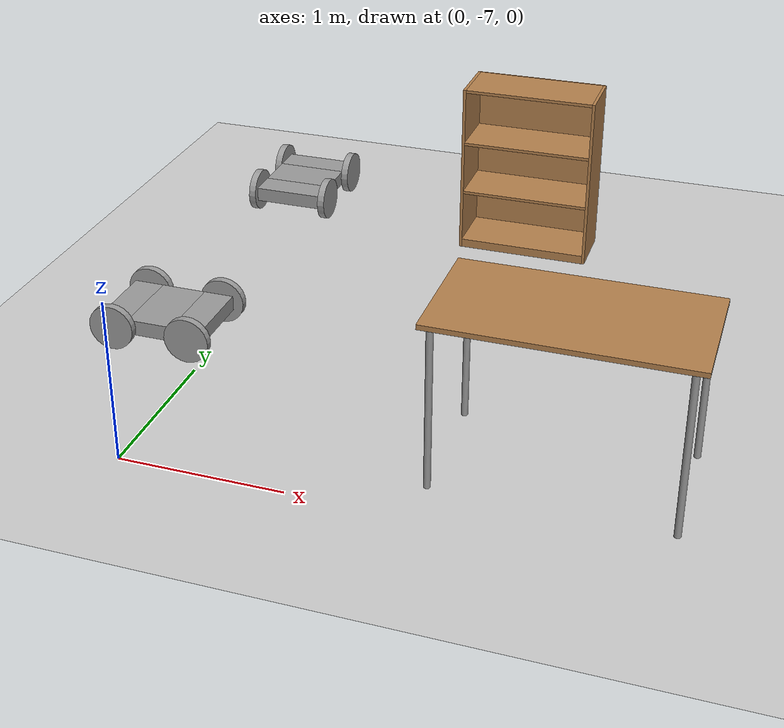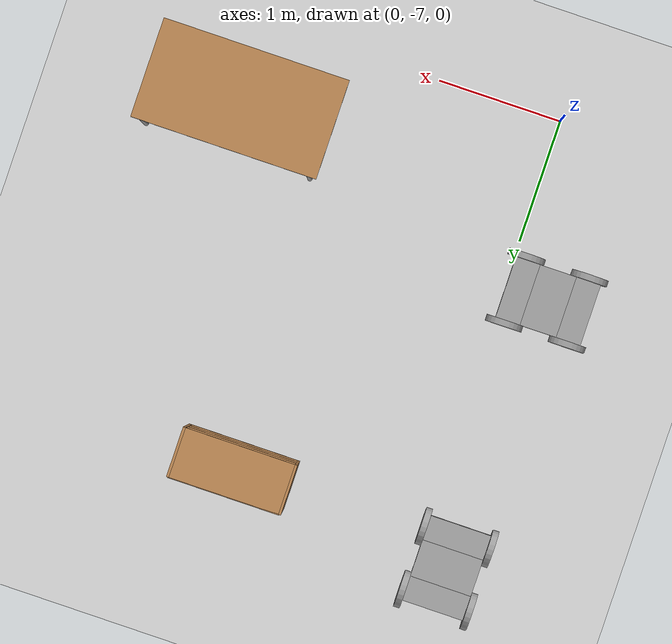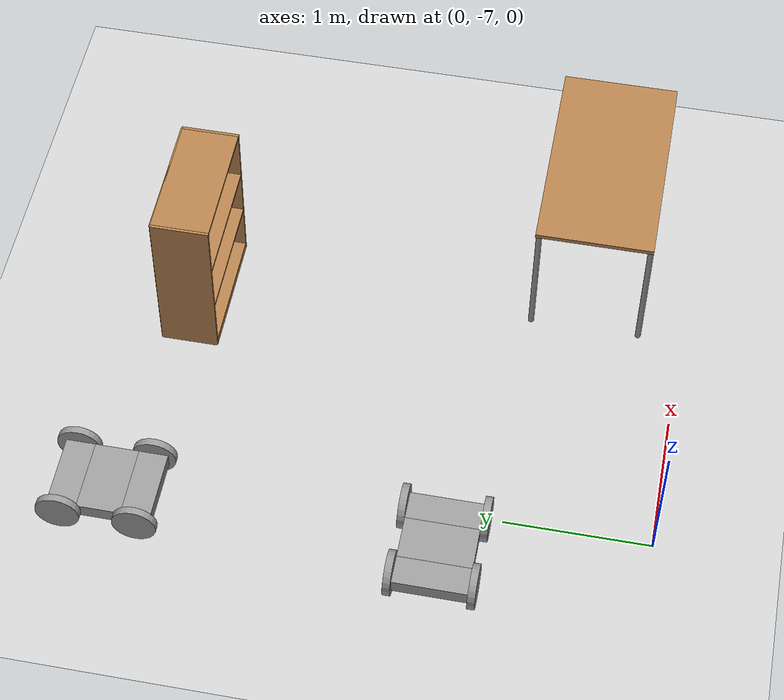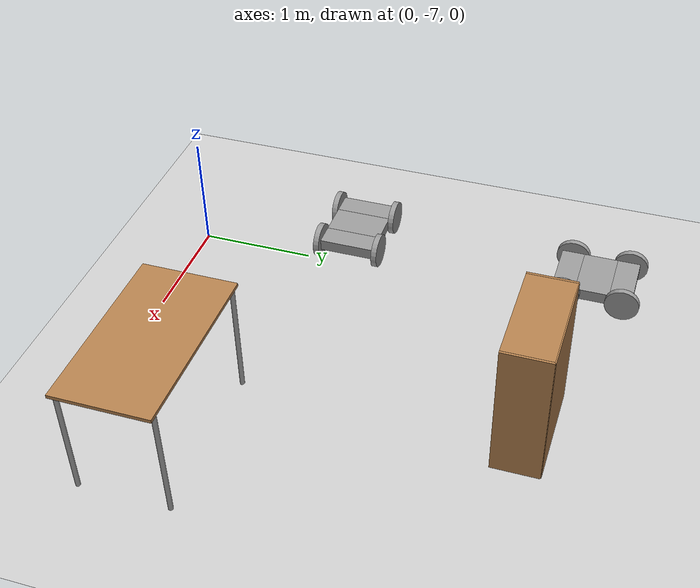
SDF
<sdf version="1.6">
 <world name="default">
  <model name="ground_plane">
   <static>1</static>
   <link name="link">
    <collision name="collision">
     <geometry><plane><normal>0 0 1</normal><size>100 100</size></plane></geometry>
     <surface><friction><ode><mu>100</mu><mu2>50</mu2></ode></friction></surface>
    </collision>
    <visual name="visual">
     <cast_shadows>0</cast_shadows>
     <geometry><plane><normal>0 0 1</normal><size>100 100</size></plane></geometry>
     <material>
      <script><uri>file://media/materials/scripts/gazebo.material</uri><name>Gazebo/Grey</name></script>
     </material>
    </visual>
   </link>
  </model>
  <model name="table">
   <static>1</static>
   <link name="link">
    <collision name="surface">
     <pose>0 0 1 0 -0 0</pose>
     <geometry><box><size>1.5 0.8 0.03</size></box></geometry>
     <surface><friction><ode><mu>0.6</mu><mu2>0.6</mu2></ode></friction></surface>
    </collision>
    <visual name="visual1">
     <pose>0 0 1 0 -0 0</pose>
     <geometry><box><size>1.5 0.8 0.03</size></box></geometry>
     <material>
      <script><uri>file://media/materials/scripts/gazebo.material</uri><name>Gazebo/Wood</name></script>
     </material>
    </visual>
    <collision name="front_left_leg">
     <pose>0.68 0.38 0.5 0 -0 0</pose>
     <geometry><cylinder><radius>0.02</radius><length>1</length></cylinder></geometry>
    </collision>
    <visual name="front_left_leg">
     <pose>0.68 0.38 0.5 0 -0 0</pose>
     <geometry><cylinder><radius>0.02</radius><length>1</length></cylinder></geometry>
     <material>
      <script><uri>file://media/materials/scripts/gazebo.material</uri><name>Gazebo/Grey</name></script>
     </material>
    </visual>
    <collision name="front_right_leg">
     <pose>0.68 -0.38 0.5 0 -0 0</pose>
     <geometry><cylinder><radius>0.02</radius><length>1</length></cylinder></geometry>
    </collision>
    <visual name="front_right_leg">
     <pose>0.68 -0.38 0.5 0 -0 0</pose>
     <geometry><cylinder><radius>0.02</radius><length>1</length></cylinder></geometry>
     <material>
      <script><uri>file://media/materials/scripts/gazebo.material</uri><name>Gazebo/Grey</name></script>
     </material>
    </visual>
    <collision name="back_right_leg">
     <pose>-0.68 -0.38 0.5 0 -0 0</pose>
     <geometry><cylinder><radius>0.02</radius><length>1</length></cylinder></geometry>
    </collision>
    <visual name="back_right_leg">
     <pose>-0.68 -0.38 0.5 0 -0 0</pose>
     <geometry><cylinder><radius>0.02</radius><length>1</length></cylinder></geometry>
     <material>
      <script><uri>file://media/materials/scripts/gazebo.material</uri><name>Gazebo/Grey</name></script>
     </material>
    </visual>
    <collision name="back_left_leg">
     <pose>-0.68 0.38 0.5 0 -0 0</pose>
     <geometry><cylinder><radius>0.02</radius><length>1</length></cylinder></geometry>
    </collision>
    <visual name="back_left_leg">
     <pose>-0.68 0.38 0.5 0 -0 0</pose>
     <geometry><cylinder><radius>0.02</radius><length>1</length></cylinder></geometry>
     <material>
      <script><uri>file://media/materials/scripts/gazebo.material</uri><name>Gazebo/Grey</name></script>
     </material>
    </visual>
   </link>
   <pose>2.40079 -6.32135 0 0 -0 0</pose>
  </model>
  <model name="bookshelf">
   <static>1</static>
   <link name="link">
    <inertial><mass>1</mass></inertial>
    <collision name="back">
     <pose>0 0.005 0.6 0 -0 0</pose>
     <geometry><box><size>0.9 0.01 1.2</size></box></geometry>
    </collision>
    <visual name="visual1">
     <pose>0 0.005 0.6 0 -0 0</pose>
     <geometry><box><size>0.9 0.01 1.2</size></box></geometry>
     <material>
      <script><uri>file://media/materials/scripts/gazebo.material</uri><name>Gazebo/Wood</name></script>
     </material>
    </visual>
    <collision name="left_side">
     <pose>0.45 -0.195 0.6 0 -0 0</pose>
     <geometry><box><size>0.02 0.4 1.2</size></box></geometry>
    </collision>
    <visual name="visual2">
     <pose>0.45 -0.195 0.6 0 -0 0</pose>
     <geometry><box><size>0.02 0.4 1.2</size></box></geometry>
     <material>
      <script><uri>file://media/materials/scripts/gazebo.material</uri><name>Gazebo/Wood</name></script>
     </material>
    </visual>
    <collision name="right_side">
     <pose>-0.45 -0.195 0.6 0 -0 0</pose>
     <geometry><box><size>0.02 0.4 1.2</size></box></geometry>
    </collision>
    <visual name="visual3">
     <pose>-0.45 -0.195 0.6 0 -0 0</pose>
     <geometry><box><size>0.02 0.4 1.2</size></box></geometry>
     <material>
      <script><uri>file://media/materials/scripts/gazebo.material</uri><name>Gazebo/Wood</name></script>
     </material>
    </visual>
    <collision name="bottom">
     <pose>0 -0.195 0.03 0 -0 0</pose>
     <geometry><box><size>0.88 0.4 0.06</size></box></geometry>
    </collision>
    <visual name="visual4">
     <pose>0 -0.195 0.03 0 -0 0</pose>
     <geometry><box><size>0.88 0.4 0.06</size></box></geometry>
     <material>
      <script><uri>file://media/materials/scripts/gazebo.material</uri><name>Gazebo/Wood</name></script>
     </material>
    </visual>
    <collision name="top">
     <pose>0 -0.195 1.19 0 -0 0</pose>
     <geometry><box><size>0.88 0.4 0.02</size></box></geometry>
    </collision>
    <visual name="visual5">
     <pose>0 -0.195 1.19 0 -0 0</pose>
     <geometry><box><size>0.88 0.4 0.02</size></box></geometry>
     <material>
      <script><uri>file://media/materials/scripts/gazebo.material</uri><name>Gazebo/Wood</name></script>
     </material>
    </visual>
    <collision name="low_shelf">
     <pose>0 -0.195 0.43 0 -0 0</pose>
     <geometry><box><size>0.88 0.4 0.02</size></box></geometry>
    </collision>
    <visual name="visual6">
     <pose>0 -0.195 0.43 0 -0 0</pose>
     <geometry><box><size>0.88 0.4 0.02</size></box></geometry>
     <material>
      <script><uri>file://media/materials/scripts/gazebo.material</uri><name>Gazebo/Wood</name></script>
     </material>
    </visual>
    <collision name="high_shelf">
     <pose>0 -0.195 0.8 0 -0 0</pose>
     <geometry><box><size>0.88 0.4 0.02</size></box></geometry>
    </collision>
    <visual name="visual7">
     <pose>0 -0.195 0.8 0 -0 0</pose>
     <geometry><box><size>0.88 0.4 0.02</size></box></geometry>
     <material>
      <script><uri>file://media/materials/scripts/gazebo.material</uri><name>Gazebo/Wood</name></script>
     </material>
    </visual>
   </link>
   <pose>1.53997 -3.41333 0 0 -0 0</pose>
  </model>
  <model name="myrobot">
   <link name="link_0">
    <pose>-0.140468 -0.222415 0.15 0 -0 0</pose>
    <inertial>
     <mass>0.2</mass>
     <inertia>
      <ixx>0.166667</ixx>
      <ixy>0</ixy>
      <ixz>0</ixz>
      <iyy>0.166667</iyy>
      <iyz>0</iyz>
      <izz>0.166667</izz>
     </inertia>
    </inertial>
    <visual name="visual">
     <geometry><box><size>0.2 0.5 0.1</size></box></geometry>
     <material>
      <lighting>1</lighting>
      <script><uri>file://media/materials/scripts/gazebo.material</uri><name>Gazebo/Grey</name></script>
      <shader type="pixel"><normal_map>__default__</normal_map></shader>
      <ambient>0.3 0.3 0.3 1</ambient>
      <diffuse>0.7 0.7 0.7 1</diffuse>
      <specular>0.01 0.01 0.01 1</specular>
      <emissive>0 0 0 1</emissive>
     </material>
    </visual>
    <collision name="collision">
     <geometry><box><size>0.2 0.5 0.1</size></box></geometry>
     <surface>
      <friction>
       <ode><mu>1</mu><mu2>1</mu2><fdir1>0 0 0</fdir1><slip1>0</slip1><slip2>0</slip2></ode>
       <torsional>
        <coefficient>1</coefficient>
        <patch_radius>0</patch_radius>
        <surface_radius>0</surface_radius>
        <use_patch_radius>1</use_patch_radius>
        <ode><slip>0</slip></ode>
       </torsional>
      </friction>
      <bounce><restitution_coefficient>0</restitution_coefficient><threshold>1e+06</threshold></bounce>
      <contact>
       <collide_without_contact>0</collide_without_contact>
       <collide_without_contact_bitmask>1</collide_without_contact_bitmask>
       <collide_bitmask>1</collide_bitmask>
       <ode>
        <soft_cfm>0</soft_cfm>
        <soft_erp>0.2</soft_erp>
        <kp>1e+13</kp>
        <kd>1</kd>
        <max_vel>0.01</max_vel>
        <min_depth>0</min_depth>
       </ode>
       <bullet>
        <split_impulse>1</split_impulse>
        <split_impulse_penetration_threshold>-0.01</split_impulse_penetration_threshold>
        <soft_cfm>0</soft_cfm>
        <soft_erp>0.2</soft_erp>
        <kp>1e+13</kp>
        <kd>1</kd>
       </bullet>
      </contact>
     </surface>
    </collision>
   </link>
   <link name="link_0_clone">
    <pose>-0.640468 -0.222415 0.15 0 -0 0</pose>
    <inertial>
     <mass>0.2</mass>
     <inertia>
      <ixx>0.166667</ixx>
      <ixy>0</ixy>
      <ixz>0</ixz>
      <iyy>0.166667</iyy>
      <iyz>0</iyz>
      <izz>0.166667</izz>
     </inertia>
    </inertial>
    <visual name="visual">
     <geometry><box><size>0.2 0.5 0.1</size></box></geometry>
     <material>
      <lighting>1</lighting>
      <script><uri>file://media/materials/scripts/gazebo.material</uri><name>Gazebo/Grey</name></script>
      <shader type="pixel"><normal_map>__default__</normal_map></shader>
      <ambient>0.3 0.3 0.3 1</ambient>
      <diffuse>0.7 0.7 0.7 1</diffuse>
      <specular>0.01 0.01 0.01 1</specular>
      <emissive>0 0 0 1</emissive>
     </material>
    </visual>
    <collision name="collision">
     <geometry><box><size>0.2 0.5 0.1</size></box></geometry>
     <surface>
      <friction>
       <ode><mu>1</mu><mu2>1</mu2><fdir1>0 0 0</fdir1><slip1>0</slip1><slip2>0</slip2></ode>
       <torsional>
        <coefficient>1</coefficient>
        <patch_radius>0</patch_radius>
        <surface_radius>0</surface_radius>
        <use_patch_radius>1</use_patch_radius>
        <ode><slip>0</slip></ode>
       </torsional>
      </friction>
      <bounce><restitution_coefficient>0</restitution_coefficient><threshold>1e+06</threshold></bounce>
      <contact>
       <collide_without_contact>0</collide_without_contact>
       <collide_without_contact_bitmask>1</collide_without_contact_bitmask>
       <collide_bitmask>1</collide_bitmask>
       <ode>
        <soft_cfm>0</soft_cfm>
        <soft_erp>0.2</soft_erp>
        <kp>1e+13</kp>
        <kd>1</kd>
        <max_vel>0.01</max_vel>
        <min_depth>0</min_depth>
       </ode>
       <bullet>
        <split_impulse>1</split_impulse>
        <split_impulse_penetration_threshold>-0.01</split_impulse_penetration_threshold>
        <soft_cfm>0</soft_cfm>
        <soft_erp>0.2</soft_erp>
        <kp>1e+13</kp>
        <kd>1</kd>
       </bullet>
      </contact>
     </surface>
    </collision>
   </link>
   <link name="link_0_clone_clone">
    <pose>-0.390468 -0.222415 0.15 0 -0 0</pose>
    <inertial>
     <mass>0.2</mass>
     <inertia>
      <ixx>0.166667</ixx>
      <ixy>0</ixy>
      <ixz>0</ixz>
      <iyy>0.166667</iyy>
      <iyz>0</iyz>
      <izz>0.166667</izz>
     </inertia>
    </inertial>
    <visual name="visual">
     <geometry><box><size>0.3 0.5 0.1</size></box></geometry>
     <material>
      <lighting>1</lighting>
      <script><uri>file://media/materials/scripts/gazebo.material</uri><name>Gazebo/Grey</name></script>
      <shader type="pixel"><normal_map>__default__</normal_map></shader>
      <ambient>0.3 0.3 0.3 1</ambient>
      <diffuse>0.7 0.7 0.7 1</diffuse>
      <specular>0.01 0.01 0.01 1</specular>
      <emissive>0 0 0 1</emissive>
     </material>
    </visual>
    <collision name="collision">
     <geometry><box><size>0.3 0.5 0.1</size></box></geometry>
     <surface>
      <friction>
       <ode><mu>1</mu><mu2>1</mu2><fdir1>0 0 0</fdir1><slip1>0</slip1><slip2>0</slip2></ode>
       <torsional>
        <coefficient>1</coefficient>
        <patch_radius>0</patch_radius>
        <surface_radius>0</surface_radius>
        <use_patch_radius>1</use_patch_radius>
        <ode><slip>0</slip></ode>
       </torsional>
      </friction>
      <bounce><restitution_coefficient>0</restitution_coefficient><threshold>1e+06</threshold></bounce>
      <contact>
       <collide_without_contact>0</collide_without_contact>
       <collide_without_contact_bitmask>1</collide_without_contact_bitmask>
       <collide_bitmask>1</collide_bitmask>
       <ode>
        <soft_cfm>0</soft_cfm>
        <soft_erp>0.2</soft_erp>
        <kp>1e+13</kp>
        <kd>1</kd>
        <max_vel>0.01</max_vel>
        <min_depth>0</min_depth>
       </ode>
       <bullet>
        <split_impulse>1</split_impulse>
        <split_impulse_penetration_threshold>-0.01</split_impulse_penetration_threshold>
        <soft_cfm>0</soft_cfm>
        <soft_erp>0.2</soft_erp>
        <kp>1e+13</kp>
        <kd>1</kd>
       </bullet>
      </contact>
     </surface>
    </collision>
   </link>
   <link name="link_1">
    <pose>-0.120468 -0.497416 0.15 1.5708 -0 0</pose>
    <inertial>
     <mass>0.05</mass>
     <inertia><ixx>0.145833</ixx><ixy>0</ixy><ixz>0</ixz><iyy>0.145833</iyy><iyz>0</iyz><izz>0.125</izz></inertia>
    </inertial>
    <visual name="visual">
     <geometry><cylinder><radius>0.15</radius><length>0.05</length></cylinder></geometry>
     <material>
      <lighting>1</lighting>
      <script><uri>file://media/materials/scripts/gazebo.material</uri><name>Gazebo/Grey</name></script>
      <shader type="pixel"><normal_map>__default__</normal_map></shader>
      <ambient>0.3 0.3 0.3 1</ambient>
      <diffuse>0.7 0.7 0.7 1</diffuse>
      <specular>0.01 0.01 0.01 1</specular>
      <emissive>0 0 0 1</emissive>
     </material>
    </visual>
    <collision name="collision">
     <geometry><cylinder><radius>0.15</radius><length>0.05</length></cylinder></geometry>
     <surface>
      <friction>
       <ode><mu>1</mu><mu2>1</mu2><fdir1>0 0 0</fdir1><slip1>0</slip1><slip2>0</slip2></ode>
       <torsional>
        <coefficient>1</coefficient>
        <patch_radius>0</patch_radius>
        <surface_radius>0</surface_radius>
        <use_patch_radius>1</use_patch_radius>
        <ode><slip>0</slip></ode>
       </torsional>
      </friction>
      <bounce><restitution_coefficient>0</restitution_coefficient><threshold>1e+06</threshold></bounce>
      <contact>
       <collide_without_contact>0</collide_without_contact>
       <collide_without_contact_bitmask>1</collide_without_contact_bitmask>
       <collide_bitmask>1</collide_bitmask>
       <ode>
        <soft_cfm>0</soft_cfm>
        <soft_erp>0.2</soft_erp>
        <kp>1e+13</kp>
        <kd>1</kd>
        <max_vel>0.01</max_vel>
        <min_depth>0</min_depth>
       </ode>
       <bullet>
        <split_impulse>1</split_impulse>
        <split_impulse_penetration_threshold>-0.01</split_impulse_penetration_threshold>
        <soft_cfm>0</soft_cfm>
        <soft_erp>0.2</soft_erp>
        <kp>1e+13</kp>
        <kd>1</kd>
       </bullet>
      </contact>
     </surface>
    </collision>
   </link>
   <link name="link_1_clone">
    <pose>-0.120468 0.052586 0.15 1.5708 -0 0</pose>
    <inertial>
     <mass>0.05</mass>
     <inertia><ixx>0.145833</ixx><ixy>0</ixy><ixz>0</ixz><iyy>0.145833</iyy><iyz>0</iyz><izz>0.125</izz></inertia>
    </inertial>
    <visual name="visual">
     <geometry><cylinder><radius>0.15</radius><length>0.05</length></cylinder></geometry>
     <material>
      <lighting>1</lighting>
      <script><uri>file://media/materials/scripts/gazebo.material</uri><name>Gazebo/Grey</name></script>
      <shader type="pixel"><normal_map>__default__</normal_map></shader>
      <ambient>0.3 0.3 0.3 1</ambient>
      <diffuse>0.7 0.7 0.7 1</diffuse>
      <specular>0.01 0.01 0.01 1</specular>
      <emissive>0 0 0 1</emissive>
     </material>
    </visual>
    <collision name="collision">
     <geometry><cylinder><radius>0.15</radius><length>0.05</length></cylinder></geometry>
     <surface>
      <friction>
       <ode><mu>1</mu><mu2>1</mu2><fdir1>0 0 0</fdir1><slip1>0</slip1><slip2>0</slip2></ode>
       <torsional>
        <coefficient>1</coefficient>
        <patch_radius>0</patch_radius>
        <surface_radius>0</surface_radius>
        <use_patch_radius>1</use_patch_radius>
        <ode><slip>0</slip></ode>
       </torsional>
      </friction>
      <bounce><restitution_coefficient>0</restitution_coefficient><threshold>1e+06</threshold></bounce>
      <contact>
       <collide_without_contact>0</collide_without_contact>
       <collide_without_contact_bitmask>1</collide_without_contact_bitmask>
       <collide_bitmask>1</collide_bitmask>
       <ode>
        <soft_cfm>0</soft_cfm>
        <soft_erp>0.2</soft_erp>
        <kp>1e+13</kp>
        <kd>1</kd>
        <max_vel>0.01</max_vel>
        <min_depth>0</min_depth>
       </ode>
       <bullet>
        <split_impulse>1</split_impulse>
        <split_impulse_penetration_threshold>-0.01</split_impulse_penetration_threshold>
        <soft_cfm>0</soft_cfm>
        <soft_erp>0.2</soft_erp>
        <kp>1e+13</kp>
        <kd>1</kd>
       </bullet>
      </contact>
     </surface>
    </collision>
   </link>
   <link name="link_1_clone_0">
    <pose>-0.640468 -0.497416 0.15 1.5708 -0 0</pose>
    <inertial>
     <mass>0.05</mass>
     <inertia><ixx>0.145833</ixx><ixy>0</ixy><ixz>0</ixz><iyy>0.145833</iyy><iyz>0</iyz><izz>0.125</izz></inertia>
    </inertial>
    <visual name="visual">
     <geometry><cylinder><radius>0.15</radius><length>0.05</length></cylinder></geometry>
     <material>
      <lighting>1</lighting>
      <script><uri>file://media/materials/scripts/gazebo.material</uri><name>Gazebo/Grey</name></script>
      <shader type="pixel"><normal_map>__default__</normal_map></shader>
      <ambient>0.3 0.3 0.3 1</ambient>
      <diffuse>0.7 0.7 0.7 1</diffuse>
      <specular>0.01 0.01 0.01 1</specular>
      <emissive>0 0 0 1</emissive>
     </material>
    </visual>
    <collision name="collision">
     <geometry><cylinder><radius>0.15</radius><length>0.05</length></cylinder></geometry>
     <surface>
      <friction>
       <ode><mu>1</mu><mu2>1</mu2><fdir1>0 0 0</fdir1><slip1>0</slip1><slip2>0</slip2></ode>
       <torsional>
        <coefficient>1</coefficient>
        <patch_radius>0</patch_radius>
        <surface_radius>0</surface_radius>
        <use_patch_radius>1</use_patch_radius>
        <ode><slip>0</slip></ode>
       </torsional>
      </friction>
      <bounce><restitution_coefficient>0</restitution_coefficient><threshold>1e+06</threshold></bounce>
      <contact>
       <collide_without_contact>0</collide_without_contact>
       <collide_without_contact_bitmask>1</collide_without_contact_bitmask>
       <collide_bitmask>1</collide_bitmask>
       <ode>
        <soft_cfm>0</soft_cfm>
        <soft_erp>0.2</soft_erp>
        <kp>1e+13</kp>
        <kd>1</kd>
        <max_vel>0.01</max_vel>
        <min_depth>0</min_depth>
       </ode>
       <bullet>
        <split_impulse>1</split_impulse>
        <split_impulse_penetration_threshold>-0.01</split_impulse_penetration_threshold>
        <soft_cfm>0</soft_cfm>
        <soft_erp>0.2</soft_erp>
        <kp>1e+13</kp>
        <kd>1</kd>
       </bullet>
      </contact>
     </surface>
    </collision>
   </link>
   <link name="link_1_clone_clone">
    <pose>-0.640468 0.052586 0.15 1.5708 -0 0</pose>
    <inertial>
     <mass>0.05</mass>
     <inertia><ixx>0.145833</ixx><ixy>0</ixy><ixz>0</ixz><iyy>0.145833</iyy><iyz>0</iyz><izz>0.125</izz></inertia>
    </inertial>
    <visual name="visual">
     <geometry><cylinder><radius>0.15</radius><length>0.05</length></cylinder></geometry>
     <material>
      <lighting>1</lighting>
      <script><uri>file://media/materials/scripts/gazebo.material</uri><name>Gazebo/Grey</name></script>
      <shader type="pixel"><normal_map>__default__</normal_map></shader>
      <ambient>0.3 0.3 0.3 1</ambient>
      <diffuse>0.7 0.7 0.7 1</diffuse>
      <specular>0.01 0.01 0.01 1</specular>
      <emissive>0 0 0 1</emissive>
     </material>
    </visual>
    <collision name="collision">
     <geometry><cylinder><radius>0.15</radius><length>0.05</length></cylinder></geometry>
     <surface>
      <friction>
       <ode><mu>1</mu><mu2>1</mu2><fdir1>0 0 0</fdir1><slip1>0</slip1><slip2>0</slip2></ode>
       <torsional>
        <coefficient>1</coefficient>
        <patch_radius>0</patch_radius>
        <surface_radius>0</surface_radius>
        <use_patch_radius>1</use_patch_radius>
        <ode><slip>0</slip></ode>
       </torsional>
      </friction>
      <bounce><restitution_coefficient>0</restitution_coefficient><threshold>1e+06</threshold></bounce>
      <contact>
       <collide_without_contact>0</collide_without_contact>
       <collide_without_contact_bitmask>1</collide_without_contact_bitmask>
       <collide_bitmask>1</collide_bitmask>
       <ode>
        <soft_cfm>0</soft_cfm>
        <soft_erp>0.2</soft_erp>
        <kp>1e+13</kp>
        <kd>1</kd>
        <max_vel>0.01</max_vel>
        <min_depth>0</min_depth>
       </ode>
       <bullet>
        <split_impulse>1</split_impulse>
        <split_impulse_penetration_threshold>-0.01</split_impulse_penetration_threshold>
        <soft_cfm>0</soft_cfm>
        <soft_erp>0.2</soft_erp>
        <kp>1e+13</kp>
        <kd>1</kd>
       </bullet>
      </contact>
     </surface>
    </collision>
   </link>
   <joint name="link_0_JOINT_0" type="revolute">
    <parent>link_0</parent>
    <child>link_1</child>
    <axis>
     <xyz>0 0 1</xyz>
     <use_parent_model_frame>0</use_parent_model_frame>
     <limit>
      <lower>-1.79769e+308</lower>
      <upper>1.79769e+308</upper>
      <effort>-1</effort>
      <velocity>-1</velocity>
     </limit>
     <dynamics>
      <spring_reference>0</spring_reference>
      <spring_stiffness>0</spring_stiffness>
      <damping>0</damping>
     </dynamics>
    </axis>
    <physics>
     <ode><limit><cfm>0</cfm><erp>0.2</erp></limit><suspension><cfm>0</cfm><erp>0.2</erp></suspension></ode>
    </physics>
   </joint>
   <joint name="link_0_JOINT_1" type="revolute">
    <parent>link_0</parent>
    <child>link_1_clone</child>
    <axis>
     <xyz>0 0 1</xyz>
     <use_parent_model_frame>0</use_parent_model_frame>
     <limit>
      <lower>-1.79769e+308</lower>
      <upper>1.79769e+308</upper>
      <effort>-1</effort>
      <velocity>-1</velocity>
     </limit>
     <dynamics>
      <spring_reference>0</spring_reference>
      <spring_stiffness>0</spring_stiffness>
      <damping>0</damping>
     </dynamics>
    </axis>
    <physics>
     <ode><limit><cfm>0</cfm><erp>0.2</erp></limit><suspension><cfm>0</cfm><erp>0.2</erp></suspension></ode>
    </physics>
   </joint>
   <joint name="link_0_clone_JOINT_2" type="revolute">
    <parent>link_0_clone</parent>
    <child>link_1_clone_0</child>
    <axis>
     <xyz>0 0 1</xyz>
     <use_parent_model_frame>0</use_parent_model_frame>
     <limit>
      <lower>-1.79769e+308</lower>
      <upper>1.79769e+308</upper>
      <effort>-1</effort>
      <velocity>-1</velocity>
     </limit>
     <dynamics>
      <spring_reference>0</spring_reference>
      <spring_stiffness>0</spring_stiffness>
      <damping>0</damping>
     </dynamics>
    </axis>
    <physics>
     <ode><limit><cfm>0</cfm><erp>0.2</erp></limit><suspension><cfm>0</cfm><erp>0.2</erp></suspension></ode>
    </physics>
   </joint>
   <joint name="link_0_clone_JOINT_3" type="revolute">
    <parent>link_0_clone</parent>
    <child>link_1_clone_clone</child>
    <axis>
     <xyz>0 0 1</xyz>
     <use_parent_model_frame>0</use_parent_model_frame>
     <limit>
      <lower>-1.79769e+308</lower>
      <upper>1.79769e+308</upper>
      <effort>-1</effort>
      <velocity>-1</velocity>
     </limit>
     <dynamics>
      <spring_reference>0</spring_reference>
      <spring_stiffness>0</spring_stiffness>
      <damping>0</damping>
     </dynamics>
    </axis>
    <physics>
     <ode><limit><cfm>0</cfm><erp>0.2</erp></limit><suspension><cfm>0</cfm><erp>0.2</erp></suspension></ode>
    </physics>
   </joint>
   <joint name="link_0_clone_clone_JOINT_4" type="fixed">
    <parent>link_0_clone_clone</parent>
    <child>link_0_clone</child>
    <physics>
     <ode><limit><cfm>0</cfm><erp>0.2</erp></limit><suspension><cfm>0</cfm><erp>0.2</erp></suspension></ode>
    </physics>
   </joint>
   <joint name="link_0_clone_clone_JOINT_5" type="fixed">
    <parent>link_0_clone_clone</parent>
    <child>link_0</child>
    <physics>
     <ode><limit><cfm>0</cfm><erp>0.2</erp></limit><suspension><cfm>0</cfm><erp>0.2</erp></suspension></ode>
    </physics>
   </joint>
   <static>0</static>
   <pose>0.031948 -5.40446 0 1e-06 1e-06 -0.001236</pose>
  </model>
  <model name="myrobot_0">
   <link name="link_0">
    <pose>-0.140468 -0.222415 0.15 0 -0 0</pose>
    <inertial>
     <mass>0.2</mass>
     <inertia>
      <ixx>0.166667</ixx>
      <ixy>0</ixy>
      <ixz>0</ixz>
      <iyy>0.166667</iyy>
      <iyz>0</iyz>
      <izz>0.166667</izz>
     </inertia>
    </inertial>
    <visual name="visual">
     <geometry><box><size>0.2 0.5 0.1</size></box></geometry>
     <material>
      <lighting>1</lighting>
      <script><uri>file://media/materials/scripts/gazebo.material</uri><name>Gazebo/Grey</name></script>
      <shader type="pixel"><normal_map>__default__</normal_map></shader>
      <ambient>0.3 0.3 0.3 1</ambient>
      <diffuse>0.7 0.7 0.7 1</diffuse>
      <specular>0.01 0.01 0.01 1</specular>
      <emissive>0 0 0 1</emissive>
     </material>
    </visual>
    <collision name="collision">
     <geometry><box><size>0.2 0.5 0.1</size></box></geometry>
     <surface>
      <friction>
       <ode><mu>1</mu><mu2>1</mu2><fdir1>0 0 0</fdir1><slip1>0</slip1><slip2>0</slip2></ode>
       <torsional>
        <coefficient>1</coefficient>
        <patch_radius>0</patch_radius>
        <surface_radius>0</surface_radius>
        <use_patch_radius>1</use_patch_radius>
        <ode><slip>0</slip></ode>
       </torsional>
      </friction>
      <bounce><restitution_coefficient>0</restitution_coefficient><threshold>1e+06</threshold></bounce>
      <contact>
       <collide_without_contact>0</collide_without_contact>
       <collide_without_contact_bitmask>1</collide_without_contact_bitmask>
       <collide_bitmask>1</collide_bitmask>
       <ode>
        <soft_cfm>0</soft_cfm>
        <soft_erp>0.2</soft_erp>
        <kp>1e+13</kp>
        <kd>1</kd>
        <max_vel>0.01</max_vel>
        <min_depth>0</min_depth>
       </ode>
       <bullet>
        <split_impulse>1</split_impulse>
        <split_impulse_penetration_threshold>-0.01</split_impulse_penetration_threshold>
        <soft_cfm>0</soft_cfm>
        <soft_erp>0.2</soft_erp>
        <kp>1e+13</kp>
        <kd>1</kd>
       </bullet>
      </contact>
     </surface>
    </collision>
   </link>
   <link name="link_0_clone">
    <pose>-0.640468 -0.222415 0.15 0 -0 0</pose>
    <inertial>
     <mass>0.2</mass>
     <inertia>
      <ixx>0.166667</ixx>
      <ixy>0</ixy>
      <ixz>0</ixz>
      <iyy>0.166667</iyy>
      <iyz>0</iyz>
      <izz>0.166667</izz>
     </inertia>
    </inertial>
    <visual name="visual">
     <geometry><box><size>0.2 0.5 0.1</size></box></geometry>
     <material>
      <lighting>1</lighting>
      <script><uri>file://media/materials/scripts/gazebo.material</uri><name>Gazebo/Grey</name></script>
      <shader type="pixel"><normal_map>__default__</normal_map></shader>
      <ambient>0.3 0.3 0.3 1</ambient>
      <diffuse>0.7 0.7 0.7 1</diffuse>
      <specular>0.01 0.01 0.01 1</specular>
      <emissive>0 0 0 1</emissive>
     </material>
    </visual>
    <collision name="collision">
     <geometry><box><size>0.2 0.5 0.1</size></box></geometry>
     <surface>
      <friction>
       <ode><mu>1</mu><mu2>1</mu2><fdir1>0 0 0</fdir1><slip1>0</slip1><slip2>0</slip2></ode>
       <torsional>
        <coefficient>1</coefficient>
        <patch_radius>0</patch_radius>
        <surface_radius>0</surface_radius>
        <use_patch_radius>1</use_patch_radius>
        <ode><slip>0</slip></ode>
       </torsional>
      </friction>
      <bounce><restitution_coefficient>0</restitution_coefficient><threshold>1e+06</threshold></bounce>
      <contact>
       <collide_without_contact>0</collide_without_contact>
       <collide_without_contact_bitmask>1</collide_without_contact_bitmask>
       <collide_bitmask>1</collide_bitmask>
       <ode>
        <soft_cfm>0</soft_cfm>
        <soft_erp>0.2</soft_erp>
        <kp>1e+13</kp>
        <kd>1</kd>
        <max_vel>0.01</max_vel>
        <min_depth>0</min_depth>
       </ode>
       <bullet>
        <split_impulse>1</split_impulse>
        <split_impulse_penetration_threshold>-0.01</split_impulse_penetration_threshold>
        <soft_cfm>0</soft_cfm>
        <soft_erp>0.2</soft_erp>
        <kp>1e+13</kp>
        <kd>1</kd>
       </bullet>
      </contact>
     </surface>
    </collision>
   </link>
   <link name="link_0_clone_clone">
    <pose>-0.390468 -0.222415 0.15 0 -0 0</pose>
    <inertial>
     <mass>0.2</mass>
     <inertia>
      <ixx>0.166667</ixx>
      <ixy>0</ixy>
      <ixz>0</ixz>
      <iyy>0.166667</iyy>
      <iyz>0</iyz>
      <izz>0.166667</izz>
     </inertia>
    </inertial>
    <visual name="visual">
     <geometry><box><size>0.3 0.5 0.1</size></box></geometry>
     <material>
      <lighting>1</lighting>
      <script><uri>file://media/materials/scripts/gazebo.material</uri><name>Gazebo/Grey</name></script>
      <shader type="pixel"><normal_map>__default__</normal_map></shader>
      <ambient>0.3 0.3 0.3 1</ambient>
      <diffuse>0.7 0.7 0.7 1</diffuse>
      <specular>0.01 0.01 0.01 1</specular>
      <emissive>0 0 0 1</emissive>
     </material>
    </visual>
    <collision name="collision">
     <geometry><box><size>0.3 0.5 0.1</size></box></geometry>
     <surface>
      <friction>
       <ode><mu>1</mu><mu2>1</mu2><fdir1>0 0 0</fdir1><slip1>0</slip1><slip2>0</slip2></ode>
       <torsional>
        <coefficient>1</coefficient>
        <patch_radius>0</patch_radius>
        <surface_radius>0</surface_radius>
        <use_patch_radius>1</use_patch_radius>
        <ode><slip>0</slip></ode>
       </torsional>
      </friction>
      <bounce><restitution_coefficient>0</restitution_coefficient><threshold>1e+06</threshold></bounce>
      <contact>
       <collide_without_contact>0</collide_without_contact>
       <collide_without_contact_bitmask>1</collide_without_contact_bitmask>
       <collide_bitmask>1</collide_bitmask>
       <ode>
        <soft_cfm>0</soft_cfm>
        <soft_erp>0.2</soft_erp>
        <kp>1e+13</kp>
        <kd>1</kd>
        <max_vel>0.01</max_vel>
        <min_depth>0</min_depth>
       </ode>
       <bullet>
        <split_impulse>1</split_impulse>
        <split_impulse_penetration_threshold>-0.01</split_impulse_penetration_threshold>
        <soft_cfm>0</soft_cfm>
        <soft_erp>0.2</soft_erp>
        <kp>1e+13</kp>
        <kd>1</kd>
       </bullet>
      </contact>
     </surface>
    </collision>
   </link>
   <link name="link_1">
    <pose>-0.120468 -0.497416 0.15 1.5708 -0 0</pose>
    <inertial>
     <mass>0.05</mass>
     <inertia><ixx>0.145833</ixx><ixy>0</ixy><ixz>0</ixz><iyy>0.145833</iyy><iyz>0</iyz><izz>0.125</izz></inertia>
    </inertial>
    <visual name="visual">
     <geometry><cylinder><radius>0.15</radius><length>0.05</length></cylinder></geometry>
     <material>
      <lighting>1</lighting>
      <script><uri>file://media/materials/scripts/gazebo.material</uri><name>Gazebo/Grey</name></script>
      <shader type="pixel"><normal_map>__default__</normal_map></shader>
      <ambient>0.3 0.3 0.3 1</ambient>
      <diffuse>0.7 0.7 0.7 1</diffuse>
      <specular>0.01 0.01 0.01 1</specular>
      <emissive>0 0 0 1</emissive>
     </material>
    </visual>
    <collision name="collision">
     <geometry><cylinder><radius>0.15</radius><length>0.05</length></cylinder></geometry>
     <surface>
      <friction>
       <ode><mu>1</mu><mu2>1</mu2><fdir1>0 0 0</fdir1><slip1>0</slip1><slip2>0</slip2></ode>
       <torsional>
        <coefficient>1</coefficient>
        <patch_radius>0</patch_radius>
        <surface_radius>0</surface_radius>
        <use_patch_radius>1</use_patch_radius>
        <ode><slip>0</slip></ode>
       </torsional>
      </friction>
      <bounce><restitution_coefficient>0</restitution_coefficient><threshold>1e+06</threshold></bounce>
      <contact>
       <collide_without_contact>0</collide_without_contact>
       <collide_without_contact_bitmask>1</collide_without_contact_bitmask>
       <collide_bitmask>1</collide_bitmask>
       <ode>
        <soft_cfm>0</soft_cfm>
        <soft_erp>0.2</soft_erp>
        <kp>1e+13</kp>
        <kd>1</kd>
        <max_vel>0.01</max_vel>
        <min_depth>0</min_depth>
       </ode>
       <bullet>
        <split_impulse>1</split_impulse>
        <split_impulse_penetration_threshold>-0.01</split_impulse_penetration_threshold>
        <soft_cfm>0</soft_cfm>
        <soft_erp>0.2</soft_erp>
        <kp>1e+13</kp>
        <kd>1</kd>
       </bullet>
      </contact>
     </surface>
    </collision>
   </link>
   <link name="link_1_clone">
    <pose>-0.120468 0.052586 0.15 1.5708 -0 0</pose>
    <inertial>
     <mass>0.05</mass>
     <inertia><ixx>0.145833</ixx><ixy>0</ixy><ixz>0</ixz><iyy>0.145833</iyy><iyz>0</iyz><izz>0.125</izz></inertia>
    </inertial>
    <visual name="visual">
     <geometry><cylinder><radius>0.15</radius><length>0.05</length></cylinder></geometry>
     <material>
      <lighting>1</lighting>
      <script><uri>file://media/materials/scripts/gazebo.material</uri><name>Gazebo/Grey</name></script>
      <shader type="pixel"><normal_map>__default__</normal_map></shader>
      <ambient>0.3 0.3 0.3 1</ambient>
      <diffuse>0.7 0.7 0.7 1</diffuse>
      <specular>0.01 0.01 0.01 1</specular>
      <emissive>0 0 0 1</emissive>
     </material>
    </visual>
    <collision name="collision">
     <geometry><cylinder><radius>0.15</radius><length>0.05</length></cylinder></geometry>
     <surface>
      <friction>
       <ode><mu>1</mu><mu2>1</mu2><fdir1>0 0 0</fdir1><slip1>0</slip1><slip2>0</slip2></ode>
       <torsional>
        <coefficient>1</coefficient>
        <patch_radius>0</patch_radius>
        <surface_radius>0</surface_radius>
        <use_patch_radius>1</use_patch_radius>
        <ode><slip>0</slip></ode>
       </torsional>
      </friction>
      <bounce><restitution_coefficient>0</restitution_coefficient><threshold>1e+06</threshold></bounce>
      <contact>
       <collide_without_contact>0</collide_without_contact>
       <collide_without_contact_bitmask>1</collide_without_contact_bitmask>
       <collide_bitmask>1</collide_bitmask>
       <ode>
        <soft_cfm>0</soft_cfm>
        <soft_erp>0.2</soft_erp>
        <kp>1e+13</kp>
        <kd>1</kd>
        <max_vel>0.01</max_vel>
        <min_depth>0</min_depth>
       </ode>
       <bullet>
        <split_impulse>1</split_impulse>
        <split_impulse_penetration_threshold>-0.01</split_impulse_penetration_threshold>
        <soft_cfm>0</soft_cfm>
        <soft_erp>0.2</soft_erp>
        <kp>1e+13</kp>
        <kd>1</kd>
       </bullet>
      </contact>
     </surface>
    </collision>
   </link>
   <link name="link_1_clone_0">
    <pose>-0.640468 -0.497416 0.15 1.5708 -0 0</pose>
    <inertial>
     <mass>0.05</mass>
     <inertia><ixx>0.145833</ixx><ixy>0</ixy><ixz>0</ixz><iyy>0.145833</iyy><iyz>0</iyz><izz>0.125</izz></inertia>
    </inertial>
    <visual name="visual">
     <geometry><cylinder><radius>0.15</radius><length>0.05</length></cylinder></geometry>
     <material>
      <lighting>1</lighting>
      <script><uri>file://media/materials/scripts/gazebo.material</uri><name>Gazebo/Grey</name></script>
      <shader type="pixel"><normal_map>__default__</normal_map></shader>
      <ambient>0.3 0.3 0.3 1</ambient>
      <diffuse>0.7 0.7 0.7 1</diffuse>
      <specular>0.01 0.01 0.01 1</specular>
      <emissive>0 0 0 1</emissive>
     </material>
    </visual>
    <collision name="collision">
     <geometry><cylinder><radius>0.15</radius><length>0.05</length></cylinder></geometry>
     <surface>
      <friction>
       <ode><mu>1</mu><mu2>1</mu2><fdir1>0 0 0</fdir1><slip1>0</slip1><slip2>0</slip2></ode>
       <torsional>
        <coefficient>1</coefficient>
        <patch_radius>0</patch_radius>
        <surface_radius>0</surface_radius>
        <use_patch_radius>1</use_patch_radius>
        <ode><slip>0</slip></ode>
       </torsional>
      </friction>
      <bounce><restitution_coefficient>0</restitution_coefficient><threshold>1e+06</threshold></bounce>
      <contact>
       <collide_without_contact>0</collide_without_contact>
       <collide_without_contact_bitmask>1</collide_without_contact_bitmask>
       <collide_bitmask>1</collide_bitmask>
       <ode>
        <soft_cfm>0</soft_cfm>
        <soft_erp>0.2</soft_erp>
        <kp>1e+13</kp>
        <kd>1</kd>
        <max_vel>0.01</max_vel>
        <min_depth>0</min_depth>
       </ode>
       <bullet>
        <split_impulse>1</split_impulse>
        <split_impulse_penetration_threshold>-0.01</split_impulse_penetration_threshold>
        <soft_cfm>0</soft_cfm>
        <soft_erp>0.2</soft_erp>
        <kp>1e+13</kp>
        <kd>1</kd>
       </bullet>
      </contact>
     </surface>
    </collision>
   </link>
   <link name="link_1_clone_clone">
    <pose>-0.640468 0.052586 0.15 1.5708 -0 0</pose>
    <inertial>
     <mass>0.05</mass>
     <inertia><ixx>0.145833</ixx><ixy>0</ixy><ixz>0</ixz><iyy>0.145833</iyy><iyz>0</iyz><izz>0.125</izz></inertia>
    </inertial>
    <visual name="visual">
     <geometry><cylinder><radius>0.15</radius><length>0.05</length></cylinder></geometry>
     <material>
      <lighting>1</lighting>
      <script><uri>file://media/materials/scripts/gazebo.material</uri><name>Gazebo/Grey</name></script>
      <shader type="pixel"><normal_map>__default__</normal_map></shader>
      <ambient>0.3 0.3 0.3 1</ambient>
      <diffuse>0.7 0.7 0.7 1</diffuse>
      <specular>0.01 0.01 0.01 1</specular>
      <emissive>0 0 0 1</emissive>
     </material>
    </visual>
    <collision name="collision">
     <geometry><cylinder><radius>0.15</radius><length>0.05</length></cylinder></geometry>
     <surface>
      <friction>
       <ode><mu>1</mu><mu2>1</mu2><fdir1>0 0 0</fdir1><slip1>0</slip1><slip2>0</slip2></ode>
       <torsional>
        <coefficient>1</coefficient>
        <patch_radius>0</patch_radius>
        <surface_radius>0</surface_radius>
        <use_patch_radius>1</use_patch_radius>
        <ode><slip>0</slip></ode>
       </torsional>
      </friction>
      <bounce><restitution_coefficient>0</restitution_coefficient><threshold>1e+06</threshold></bounce>
      <contact>
       <collide_without_contact>0</collide_without_contact>
       <collide_without_contact_bitmask>1</collide_without_contact_bitmask>
       <collide_bitmask>1</collide_bitmask>
       <ode>
        <soft_cfm>0</soft_cfm>
        <soft_erp>0.2</soft_erp>
        <kp>1e+13</kp>
        <kd>1</kd>
        <max_vel>0.01</max_vel>
        <min_depth>0</min_depth>
       </ode>
       <bullet>
        <split_impulse>1</split_impulse>
        <split_impulse_penetration_threshold>-0.01</split_impulse_penetration_threshold>
        <soft_cfm>0</soft_cfm>
        <soft_erp>0.2</soft_erp>
        <kp>1e+13</kp>
        <kd>1</kd>
       </bullet>
      </contact>
     </surface>
    </collision>
   </link>
   <joint name="link_0_JOINT_0" type="revolute">
    <parent>link_0</parent>
    <child>link_1</child>
    <axis>
     <xyz>0 0 1</xyz>
     <use_parent_model_frame>0</use_parent_model_frame>
     <limit>
      <lower>-1.79769e+308</lower>
      <upper>1.79769e+308</upper>
      <effort>-1</effort>
      <velocity>-1</velocity>
     </limit>
     <dynamics>
      <spring_reference>0</spring_reference>
      <spring_stiffness>0</spring_stiffness>
      <damping>0</damping>
     </dynamics>
    </axis>
    <physics>
     <ode><limit><cfm>0</cfm><erp>0.2</erp></limit><suspension><cfm>0</cfm><erp>0.2</erp></suspension></ode>
    </physics>
   </joint>
   <joint name="link_0_JOINT_1" type="revolute">
    <parent>link_0</parent>
    <child>link_1_clone</child>
    <axis>
     <xyz>0 0 1</xyz>
     <use_parent_model_frame>0</use_parent_model_frame>
     <limit>
      <lower>-1.79769e+308</lower>
      <upper>1.79769e+308</upper>
      <effort>-1</effort>
      <velocity>-1</velocity>
     </limit>
     <dynamics>
      <spring_reference>0</spring_reference>
      <spring_stiffness>0</spring_stiffness>
      <damping>0</damping>
     </dynamics>
    </axis>
    <physics>
     <ode><limit><cfm>0</cfm><erp>0.2</erp></limit><suspension><cfm>0</cfm><erp>0.2</erp></suspension></ode>
    </physics>
   </joint>
   <joint name="link_0_clone_JOINT_2" type="revolute">
    <parent>link_0_clone</parent>
    <child>link_1_clone_0</child>
    <axis>
     <xyz>0 0 1</xyz>
     <use_parent_model_frame>0</use_parent_model_frame>
     <limit>
      <lower>-1.79769e+308</lower>
      <upper>1.79769e+308</upper>
      <effort>-1</effort>
      <velocity>-1</velocity>
     </limit>
     <dynamics>
      <spring_reference>0</spring_reference>
      <spring_stiffness>0</spring_stiffness>
      <damping>0</damping>
     </dynamics>
    </axis>
    <physics>
     <ode><limit><cfm>0</cfm><erp>0.2</erp></limit><suspension><cfm>0</cfm><erp>0.2</erp></suspension></ode>
    </physics>
   </joint>
   <joint name="link_0_clone_JOINT_3" type="revolute">
    <parent>link_0_clone</parent>
    <child>link_1_clone_clone</child>
    <axis>
     <xyz>0 0 1</xyz>
     <use_parent_model_frame>0</use_parent_model_frame>
     <limit>
      <lower>-1.79769e+308</lower>
      <upper>1.79769e+308</upper>
      <effort>-1</effort>
      <velocity>-1</velocity>
     </limit>
     <dynamics>
      <spring_reference>0</spring_reference>
      <spring_stiffness>0</spring_stiffness>
      <damping>0</damping>
     </dynamics>
    </axis>
    <physics>
     <ode><limit><cfm>0</cfm><erp>0.2</erp></limit><suspension><cfm>0</cfm><erp>0.2</erp></suspension></ode>
    </physics>
   </joint>
   <joint name="link_0_clone_clone_JOINT_4" type="fixed">
    <parent>link_0_clone_clone</parent>
    <child>link_0_clone</child>
    <physics>
     <ode><limit><cfm>0</cfm><erp>0.2</erp></limit><suspension><cfm>0</cfm><erp>0.2</erp></suspension></ode>
    </physics>
   </joint>
   <joint name="link_0_clone_clone_JOINT_5" type="fixed">
    <parent>link_0_clone_clone</parent>
    <child>link_0</child>
    <physics>
     <ode><limit><cfm>0</cfm><erp>0.2</erp></limit><suspension><cfm>0</cfm><erp>0.2</erp></suspension></ode>
    </physics>
   </joint>
   <static>0</static>
   <pose>-0.499069 -2.99974 0 1e-06 1e-06 1.56957</pose>
  </model>
 </world>
</sdf>
